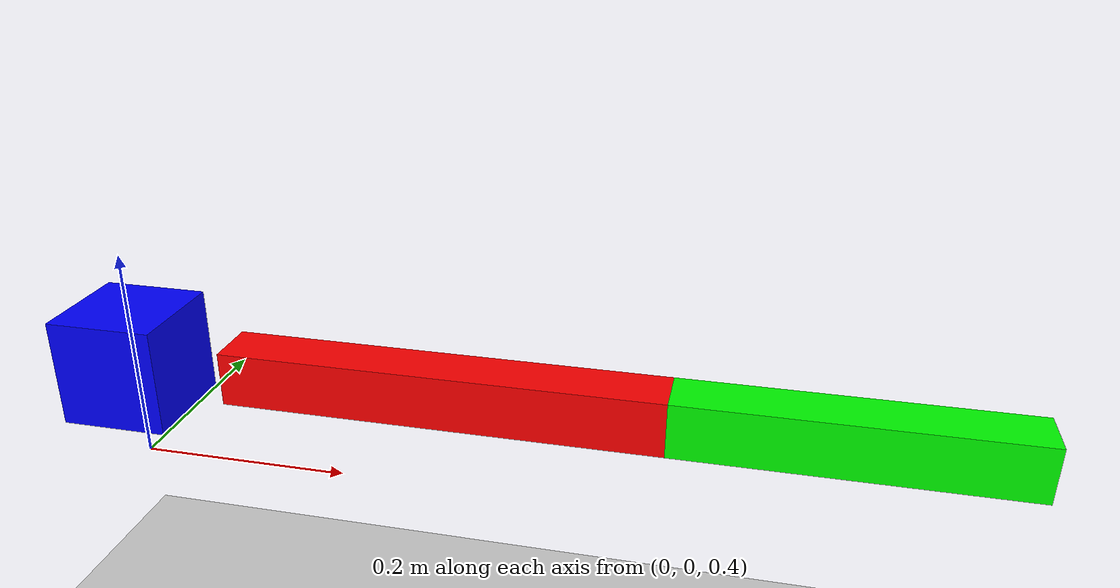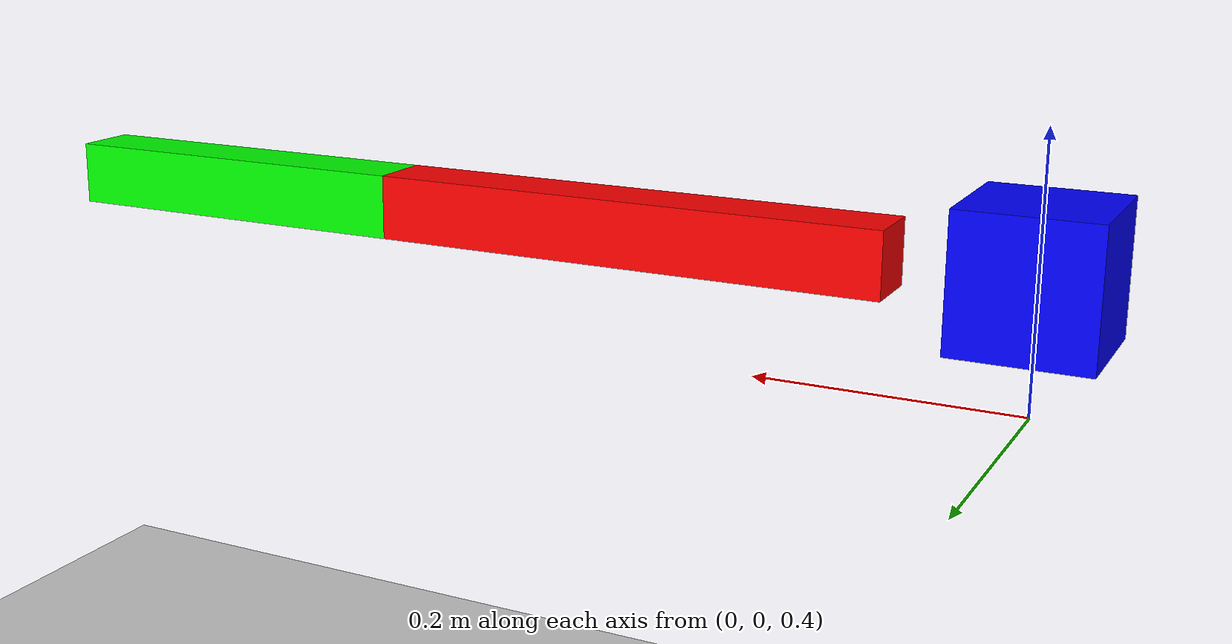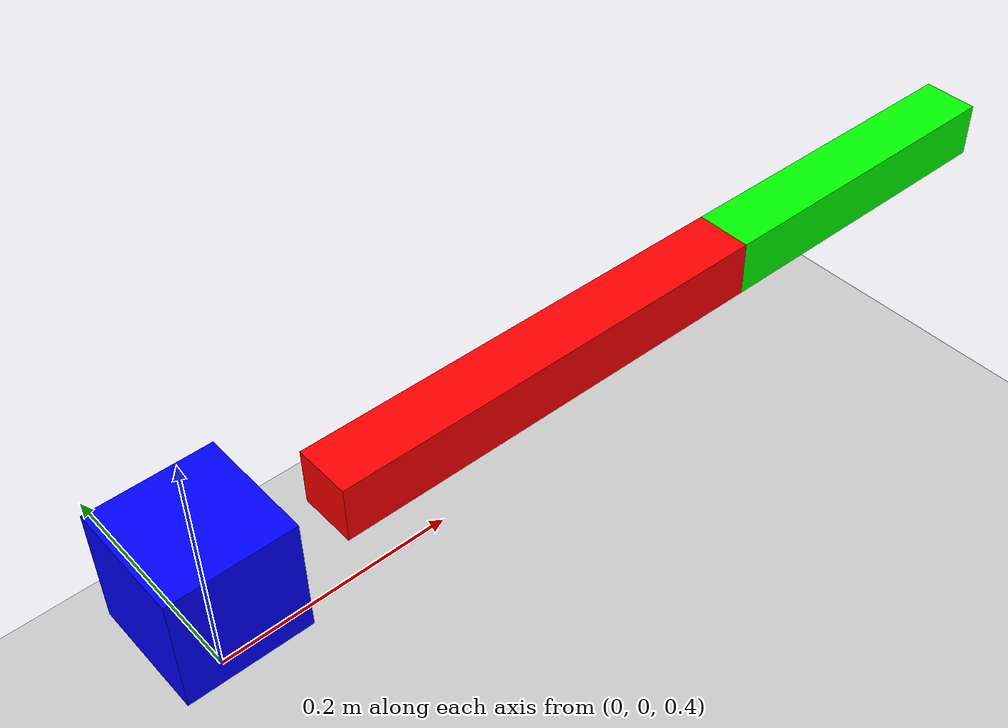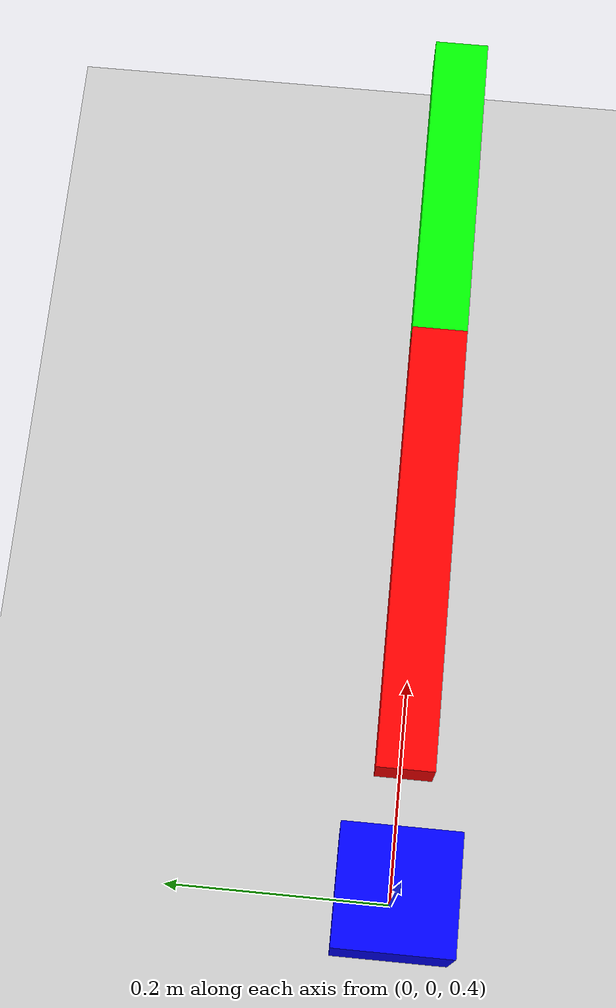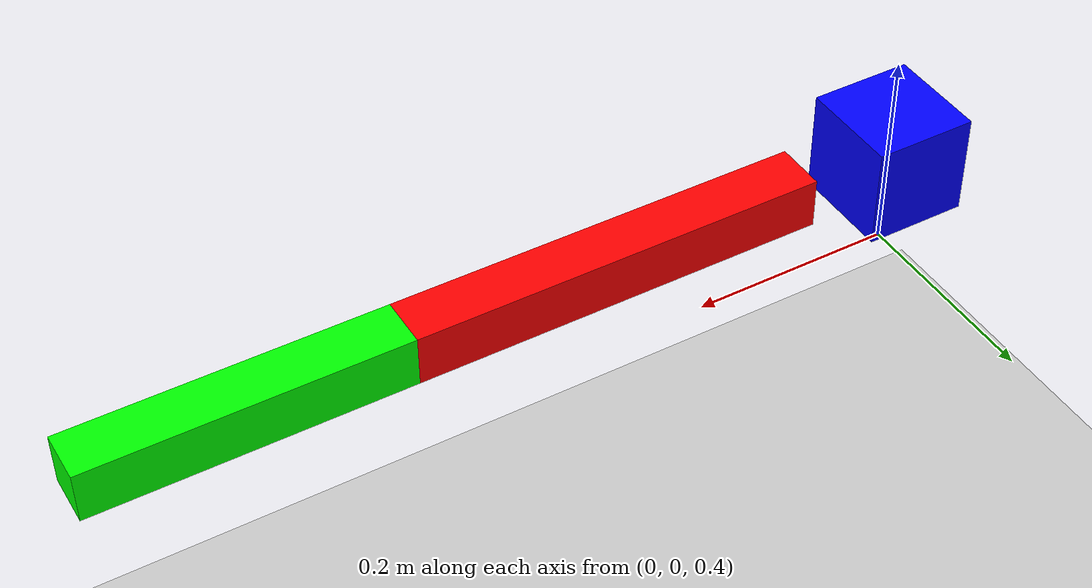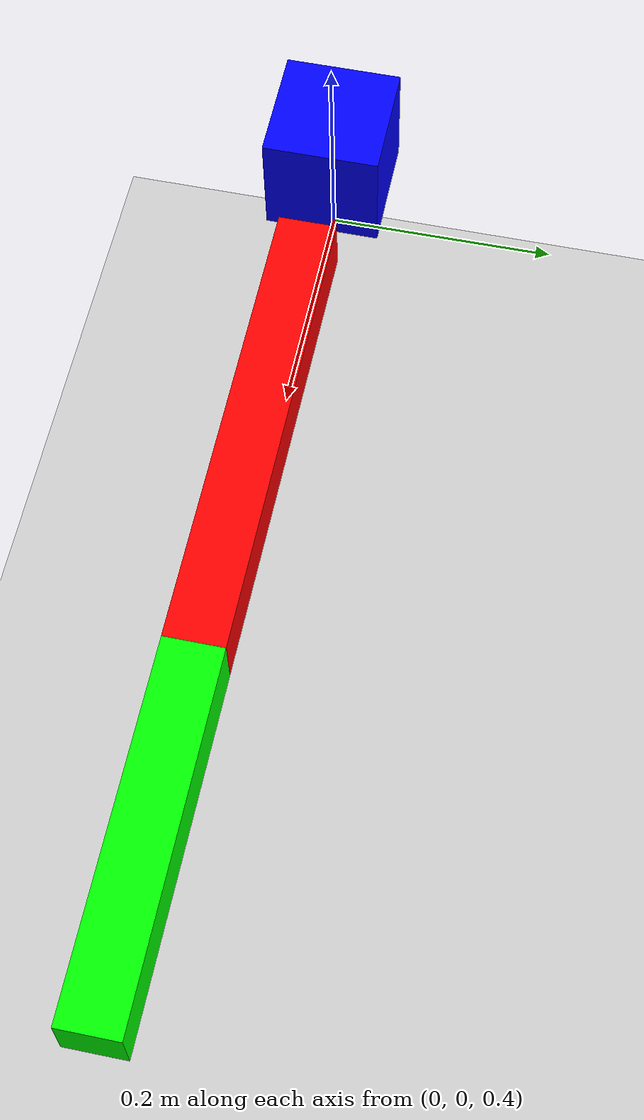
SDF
<?xml version="1.0" ?>
<sdf version="1.6">
  <world name="minimal_world_3">
    <gravity>0 0 -9.81</gravity>
    <scene>
      <ambient>0.35 0.35 0.4 1</ambient>
      <sky><time>12</time></sky>
    </scene>

    <light name="sun" type="directional">
      <cast_shadows>true</cast_shadows>
      <pose>0 0 10 0 0 0</pose>
      <diffuse>1 1 1 1</diffuse><specular>0.5 0.5 0.5 1</specular>
      <attenuation><range>100</range></attenuation>
      <direction>-0.5 0.5 -1</direction>
    </light>

    <!-- Include a model of the Ground Plane from an external URI -->
    <include>
      <uri>model://ground_plane</uri>
    </include>

    <!-- Spawn our arm model -->
    <include>
      <uri>model://models/arm</uri>
      <pose>0 0 0.5 0 0 0</pose>
      <name>crate_01</name>
    </include>

    <joint name="world_to_two_links" type="fixed">
        <parent>world</parent>
        <child>two_links::base_link</child>
    </joint>
  </world>
</sdf>

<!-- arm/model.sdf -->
<sdf version="1.6">
<model name="two_links">
  <static>false</static>

  <link name="base_link">
    <pose>0 0 0 0 0 0</pose>
    <inertial>
      <mass>1.0</mass>
      <inertia>
        <ixx>0.01</ixx>
        <iyy>0.01</iyy>
        <izz>0.01</izz>
      </inertia>
    </inertial>
    <collision name="collision">
      <geometry>
        <box><size>0.1 0.1 0.1</size></box>
      </geometry>
    </collision>
    <visual name="visual">
      <geometry>
        <box><size>0.1 0.1 0.1</size></box>
      </geometry>
      <material>
        <ambient>0 0 1 1</ambient>
        <diffuse>0 0 1 1</diffuse>
      </material>
    </visual>
  </link>

<link name="link1">
  <pose>0.1 0 0 0 0 0</pose>
  <inertial>
    <mass>0.5</mass>
    <inertia>
      <ixx>0.01</ixx>
      <iyy>0.01</iyy>
      <izz>0.01</izz>
    </inertia>
  </inertial>
  <collision name="collision">
    <geometry>
      <box><size>0.4 0.05 0.05</size></box>
    </geometry>
    <pose>0.2 0 0 0 0 0</pose>
  </collision>
  <visual name="visual">
    <geometry>
      <box><size>0.4 0.05 0.05</size></box>
    </geometry>
    <pose>0.2 0 0 0 0 0</pose>
    <material>
       <ambient>1 0 0 1</ambient>
       <diffuse>1 0 0 1</diffuse>
    </material>
  </visual>
</link>

<link name="link2">
  <pose>0.5 0 0 0 0 0</pose>
  <inertial>
    <mass>0.3</mass>
    <inertia>
      <ixx>0.01</ixx>
      <iyy>0.01</iyy>
      <izz>0.01</izz>
    </inertia>
  </inertial>
  <collision name="collision">
    <geometry>
      <box><size>0.3 0.05 0.05</size></box>
    </geometry>
    <pose>0.15 0 0 0 0 0</pose>
  </collision>
  <visual name="visual">
    <geometry>
      <box><size>0.3 0.05 0.05</size></box>
    </geometry>
    <pose>0.15 0 0 0 0 0</pose>
    <material>
       <ambient>0 1 0 1</ambient>
       <diffuse>0 1 0 1</diffuse>
    </material>
  </visual>
</link>

<joint name="joint1" type="revolute">
  <parent>base_link</parent>
  <child>link1</child>
  <pose>0 0 0.05 0 0 0</pose>
  <axis>
    <xyz>0 0 1</xyz>
    <limit>
      <lower>-1.57</lower>
      <upper>1.57</upper>
      <effort>10</effort>
      <velocity>1.0</velocity>
    </limit>
  </axis>
</joint>

<joint name="joint2" type="revolute">
  <parent>link1</parent>
  <child>link2</child>
  <pose>0.4 0 0 0 0 0</pose>
  <axis>
    <xyz>0 0 1</xyz>
    <limit>
      <lower>-1.57</lower>
      <upper>1.57</upper>
      <effort>10</effort>
      <velocity>1.0</velocity>
    </limit>
  </axis>
</joint>
</model>
</sdf>
